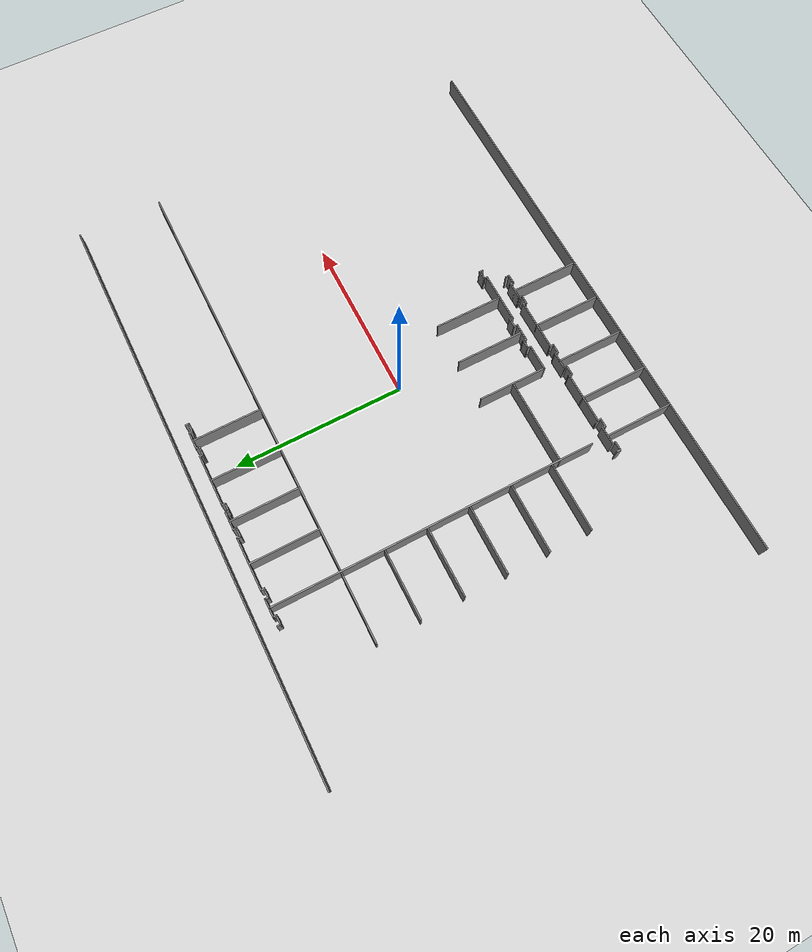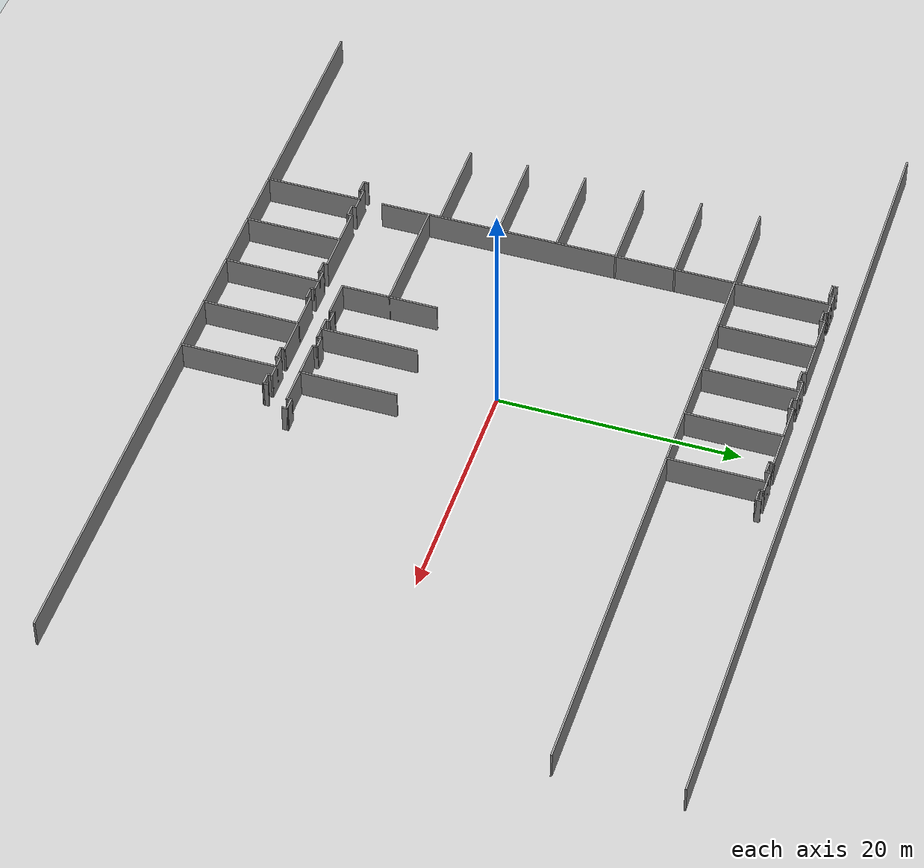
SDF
<sdf version="1.7">
 <world name="default">
  <model name="ground_plane">
   <static>1</static>
   <link name="link">
    <collision name="collision">
     <geometry><plane><normal>0 0 1</normal><size>100 100</size></plane></geometry>
     <surface>
      <contact><collide_bitmask>65535</collide_bitmask></contact>
      <friction><ode><mu>100</mu><mu2>50</mu2></ode></friction>
     </surface>
    </collision>
    <visual name="visual">
     <cast_shadows>0</cast_shadows>
     <geometry><plane><normal>0 0 1</normal><size>100 100</size></plane></geometry>
     <material>
      <script><uri>file://media/materials/scripts/gazebo.material</uri><name>Gazebo/Grey</name></script>
     </material>
    </visual>
   </link>
  </model>
  <model name="hotel_floor">
   <link name="Wall_0">
    <collision name="Wall_0_Collision">
     <geometry><box><size>68.15 0.15 2.5</size></box></geometry>
     <pose>0 0 1.25 0 -0 0</pose>
    </collision>
    <visual name="Wall_0_Visual">
     <pose>0 0 1.25 0 -0 0</pose>
     <geometry><box><size>68.15 0.15 2.5</size></box></geometry>
     <material>
      <script><uri>file://media/materials/scripts/gazebo.material</uri><name>Gazebo/Grey</name></script>
      <ambient>1 1 1 1</ambient>
     </material>
     <meta><layer>0</layer></meta>
    </visual>
    <pose>0 25 0 0 -0 0</pose>
   </link>
   <link name="Wall_14">
    <collision name="Wall_14_Collision">
     <geometry><box><size>38.15 0.15 2.5</size></box></geometry>
     <pose>0 0 1.25 0 -0 0</pose>
    </collision>
    <visual name="Wall_14_Visual">
     <pose>0 0 1.25 0 -0 0</pose>
     <geometry><box><size>38.15 0.15 2.5</size></box></geometry>
     <material>
      <script><uri>file://media/materials/scripts/gazebo.material</uri><name>Gazebo/Grey</name></script>
      <ambient>1 1 1 1</ambient>
     </material>
     <meta><layer>0</layer></meta>
    </visual>
    <pose>-16 4 0 0 -0 1.5708</pose>
   </link>
   <link name="Wall_212">
    <collision name="Wall_212_Collision">
     <geometry><box><size>0.5 0.15 2.5</size></box></geometry>
     <pose>0 0 1.25 0 -0 0</pose>
    </collision>
    <visual name="Wall_212_Visual">
     <pose>0 0 1.25 0 -0 0</pose>
     <geometry><box><size>0.5 0.15 2.5</size></box></geometry>
     <material>
      <script><uri>file://media/materials/scripts/gazebo.material</uri><name>Gazebo/Grey</name></script>
      <ambient>1 1 1 1</ambient>
     </material>
     <meta><layer>0</layer></meta>
    </visual>
    <pose>-18 -17.175 0 0 -0 -1.5708</pose>
   </link>
   <link name="Wall_213">
    <collision name="Wall_213_Collision">
     <geometry><box><size>1.15 0.15 2.5</size></box></geometry>
     <pose>0 0 1.25 0 -0 0</pose>
    </collision>
    <visual name="Wall_213_Visual">
     <pose>0 0 1.25 0 -0 0</pose>
     <geometry><box><size>1.15 0.15 2.5</size></box></geometry>
     <material>
      <script><uri>file://media/materials/scripts/gazebo.material</uri><name>Gazebo/Grey</name></script>
      <ambient>1 1 1 1</ambient>
     </material>
     <meta><layer>0</layer></meta>
    </visual>
    <pose>-17.5 -17.35 0 0 -0 0</pose>
   </link>
   <link name="Wall_215">
    <collision name="Wall_215_Collision">
     <geometry><box><size>0.5 0.15 2.5</size></box></geometry>
     <pose>0 0 1.25 0 -0 0</pose>
    </collision>
    <visual name="Wall_215_Visual">
     <pose>0 0 1.25 0 -0 0</pose>
     <geometry><box><size>0.5 0.15 2.5</size></box></geometry>
     <material>
      <script><uri>file://media/materials/scripts/gazebo.material</uri><name>Gazebo/Grey</name></script>
      <ambient>1 1 1 1</ambient>
     </material>
     <meta><layer>0</layer></meta>
    </visual>
    <pose>-17 -17.175 0 0 -0 1.5708</pose>
   </link>
   <link name="Wall_216">
    <collision name="Wall_216_Collision">
     <geometry><box><size>2.15 0.15 2.5</size></box></geometry>
     <pose>0 0 1.25 0 -0 0</pose>
    </collision>
    <visual name="Wall_216_Visual">
     <pose>0 0 1.25 0 -0 0</pose>
     <geometry><box><size>2.15 0.15 2.5</size></box></geometry>
     <material>
      <script><uri>file://media/materials/scripts/gazebo.material</uri><name>Gazebo/Grey</name></script>
      <ambient>1 1 1 1</ambient>
     </material>
     <meta><layer>0</layer></meta>
    </visual>
    <pose>-16 -17 0 0 -0 0</pose>
   </link>
   <link name="Wall_218">
    <collision name="Wall_218_Collision">
     <geometry><box><size>0.5 0.15 2.5</size></box></geometry>
     <pose>0 0 1.25 0 -0 0</pose>
    </collision>
    <visual name="Wall_218_Visual">
     <pose>0 0 1.25 0 -0 0</pose>
     <geometry><box><size>0.5 0.15 2.5</size></box></geometry>
     <material>
      <script><uri>file://media/materials/scripts/gazebo.material</uri><name>Gazebo/Grey</name></script>
      <ambient>1 1 1 1</ambient>
     </material>
     <meta><layer>0</layer></meta>
    </visual>
    <pose>-15 -17.175 0 0 -0 -1.5708</pose>
   </link>
   <link name="Wall_219">
    <collision name="Wall_219_Collision">
     <geometry><box><size>1.15 0.15 2.5</size></box></geometry>
     <pose>0 0 1.25 0 -0 0</pose>
    </collision>
    <visual name="Wall_219_Visual">
     <pose>0 0 1.25 0 -0 0</pose>
     <geometry><box><size>1.15 0.15 2.5</size></box></geometry>
     <material>
      <script><uri>file://media/materials/scripts/gazebo.material</uri><name>Gazebo/Grey</name></script>
      <ambient>1 1 1 1</ambient>
     </material>
     <meta><layer>0</layer></meta>
    </visual>
    <pose>-14.5 -17.35 0 0 -0 0</pose>
   </link>
   <link name="Wall_22">
    <collision name="Wall_22_Collision">
     <geometry><box><size>10.15 0.15 2.5</size></box></geometry>
     <pose>0 0 1.25 0 -0 0</pose>
    </collision>
    <visual name="Wall_22_Visual">
     <pose>0 0 1.25 0 -0 0</pose>
     <geometry><box><size>10.15 0.15 2.5</size></box></geometry>
     <material>
      <script><uri>file://media/materials/scripts/gazebo.material</uri><name>Gazebo/Grey</name></script>
      <ambient>1 1 1 1</ambient>
     </material>
     <meta><layer>0</layer></meta>
    </visual>
    <pose>-11 -11 0 0 -0 0</pose>
   </link>
   <link name="Wall_221">
    <collision name="Wall_221_Collision">
     <geometry><box><size>0.5 0.15 2.5</size></box></geometry>
     <pose>0 0 1.25 0 -0 0</pose>
    </collision>
    <visual name="Wall_221_Visual">
     <pose>0 0 1.25 0 -0 0</pose>
     <geometry><box><size>0.5 0.15 2.5</size></box></geometry>
     <material>
      <script><uri>file://media/materials/scripts/gazebo.material</uri><name>Gazebo/Grey</name></script>
      <ambient>1 1 1 1</ambient>
     </material>
     <meta><layer>0</layer></meta>
    </visual>
    <pose>-14 -17.175 0 0 -0 1.5708</pose>
   </link>
   <link name="Wall_222">
    <collision name="Wall_222_Collision">
     <geometry><box><size>6.15 0.15 2.5</size></box></geometry>
     <pose>0 0 1.25 0 -0 0</pose>
    </collision>
    <visual name="Wall_222_Visual">
     <pose>0 0 1.25 0 -0 0</pose>
     <geometry><box><size>6.15 0.15 2.5</size></box></geometry>
     <material>
      <script><uri>file://media/materials/scripts/gazebo.material</uri><name>Gazebo/Grey</name></script>
      <ambient>1 1 1 1</ambient>
     </material>
     <meta><layer>0</layer></meta>
    </visual>
    <pose>-11 -17 0 0 -0 0</pose>
   </link>
   <link name="Wall_224">
    <collision name="Wall_224_Collision">
     <geometry><box><size>0.5 0.15 2.5</size></box></geometry>
     <pose>0 0 1.25 0 -0 0</pose>
    </collision>
    <visual name="Wall_224_Visual">
     <pose>0 0 1.25 0 -0 0</pose>
     <geometry><box><size>0.5 0.15 2.5</size></box></geometry>
     <material>
      <script><uri>file://media/materials/scripts/gazebo.material</uri><name>Gazebo/Grey</name></script>
      <ambient>1 1 1 1</ambient>
     </material>
     <meta><layer>0</layer></meta>
    </visual>
    <pose>-8 -17.175 0 0 -0 -1.5708</pose>
   </link>
   <link name="Wall_225">
    <collision name="Wall_225_Collision">
     <geometry><box><size>1.15 0.15 2.5</size></box></geometry>
     <pose>0 0 1.25 0 -0 0</pose>
    </collision>
    <visual name="Wall_225_Visual">
     <pose>0 0 1.25 0 -0 0</pose>
     <geometry><box><size>1.15 0.15 2.5</size></box></geometry>
     <material>
      <script><uri>file://media/materials/scripts/gazebo.material</uri><name>Gazebo/Grey</name></script>
      <ambient>1 1 1 1</ambient>
     </material>
     <meta><layer>0</layer></meta>
    </visual>
    <pose>-7.5 -17.35 0 0 -0 0</pose>
   </link>
   <link name="Wall_227">
    <collision name="Wall_227_Collision">
     <geometry><box><size>0.5 0.15 2.5</size></box></geometry>
     <pose>0 0 1.25 0 -0 0</pose>
    </collision>
    <visual name="Wall_227_Visual">
     <pose>0 0 1.25 0 -0 0</pose>
     <geometry><box><size>0.5 0.15 2.5</size></box></geometry>
     <material>
      <script><uri>file://media/materials/scripts/gazebo.material</uri><name>Gazebo/Grey</name></script>
      <ambient>1 1 1 1</ambient>
     </material>
     <meta><layer>0</layer></meta>
    </visual>
    <pose>-7 -17.175 0 0 -0 1.5708</pose>
   </link>
   <link name="Wall_228">
    <collision name="Wall_228_Collision">
     <geometry><box><size>2.15 0.15 2.5</size></box></geometry>
     <pose>0 0 1.25 0 -0 0</pose>
    </collision>
    <visual name="Wall_228_Visual">
     <pose>0 0 1.25 0 -0 0</pose>
     <geometry><box><size>2.15 0.15 2.5</size></box></geometry>
     <material>
      <script><uri>file://media/materials/scripts/gazebo.material</uri><name>Gazebo/Grey</name></script>
      <ambient>1 1 1 1</ambient>
     </material>
     <meta><layer>0</layer></meta>
    </visual>
    <pose>-6 -17 0 0 -0 0</pose>
   </link>
   <link name="Wall_24">
    <collision name="Wall_24_Collision">
     <geometry><box><size>8.15 0.15 2.5</size></box></geometry>
     <pose>0 0 1.25 0 -0 0</pose>
    </collision>
    <visual name="Wall_24_Visual">
     <pose>0 0 1.25 0 -0 0</pose>
     <geometry><box><size>8.15 0.15 2.5</size></box></geometry>
     <material>
      <script><uri>file://media/materials/scripts/gazebo.material</uri><name>Gazebo/Grey</name></script>
      <ambient>1 1 1 1</ambient>
     </material>
     <meta><layer>0</layer></meta>
    </visual>
    <pose>-6 -11 0 0 -0 1.5708</pose>
   </link>
   <link name="Wall_240">
    <collision name="Wall_240_Collision">
     <geometry><box><size>0.5 0.15 2.5</size></box></geometry>
     <pose>0 0 1.25 0 -0 0</pose>
    </collision>
    <visual name="Wall_240_Visual">
     <pose>0 0 1.25 0 -0 0</pose>
     <geometry><box><size>0.5 0.15 2.5</size></box></geometry>
     <material>
      <script><uri>file://media/materials/scripts/gazebo.material</uri><name>Gazebo/Grey</name></script>
      <ambient>1 1 1 1</ambient>
     </material>
     <meta><layer>0</layer></meta>
    </visual>
    <pose>-5 -17.175 0 0 -0 -1.5708</pose>
   </link>
   <link name="Wall_241">
    <collision name="Wall_241_Collision">
     <geometry><box><size>1.15 0.15 2.5</size></box></geometry>
     <pose>0 0 1.25 0 -0 0</pose>
    </collision>
    <visual name="Wall_241_Visual">
     <pose>0 0 1.25 0 -0 0</pose>
     <geometry><box><size>1.15 0.15 2.5</size></box></geometry>
     <material>
      <script><uri>file://media/materials/scripts/gazebo.material</uri><name>Gazebo/Grey</name></script>
      <ambient>1 1 1 1</ambient>
     </material>
     <meta><layer>0</layer></meta>
    </visual>
    <pose>-4.5 -17.35 0 0 -0 0</pose>
   </link>
   <link name="Wall_243">
    <collision name="Wall_243_Collision">
     <geometry><box><size>0.5 0.15 2.5</size></box></geometry>
     <pose>0 0 1.25 0 -0 0</pose>
    </collision>
    <visual name="Wall_243_Visual">
     <pose>0 0 1.25 0 -0 0</pose>
     <geometry><box><size>0.5 0.15 2.5</size></box></geometry>
     <material>
      <script><uri>file://media/materials/scripts/gazebo.material</uri><name>Gazebo/Grey</name></script>
      <ambient>1 1 1 1</ambient>
     </material>
     <meta><layer>0</layer></meta>
    </visual>
    <pose>-4 -17.175 0 0 -0 1.5708</pose>
   </link>
   <link name="Wall_244">
    <collision name="Wall_244_Collision">
     <geometry><box><size>6.15 0.15 2.5</size></box></geometry>
     <pose>0 0 1.25 0 -0 0</pose>
    </collision>
    <visual name="Wall_244_Visual">
     <pose>0 0 1.25 0 -0 0</pose>
     <geometry><box><size>6.15 0.15 2.5</size></box></geometry>
     <material>
      <script><uri>file://media/materials/scripts/gazebo.material</uri><name>Gazebo/Grey</name></script>
      <ambient>1 1 1 1</ambient>
     </material>
     <meta><layer>0</layer></meta>
    </visual>
    <pose>-1 -17 0 0 -0 0</pose>
   </link>
   <link name="Wall_246">
    <collision name="Wall_246_Collision">
     <geometry><box><size>0.5 0.15 2.5</size></box></geometry>
     <pose>0 0 1.25 0 -0 0</pose>
    </collision>
    <visual name="Wall_246_Visual">
     <pose>0 0 1.25 0 -0 0</pose>
     <geometry><box><size>0.5 0.15 2.5</size></box></geometry>
     <material>
      <script><uri>file://media/materials/scripts/gazebo.material</uri><name>Gazebo/Grey</name></script>
      <ambient>1 1 1 1</ambient>
     </material>
     <meta><layer>0</layer></meta>
    </visual>
    <pose>2 -17.175 0 0 -0 -1.5708</pose>
   </link>
   <link name="Wall_247">
    <collision name="Wall_247_Collision">
     <geometry><box><size>1.15 0.15 2.5</size></box></geometry>
     <pose>0 0 1.25 0 -0 0</pose>
    </collision>
    <visual name="Wall_247_Visual">
     <pose>0 0 1.25 0 -0 0</pose>
     <geometry><box><size>1.15 0.15 2.5</size></box></geometry>
     <material>
      <script><uri>file://media/materials/scripts/gazebo.material</uri><name>Gazebo/Grey</name></script>
      <ambient>1 1 1 1</ambient>
     </material>
     <meta><layer>0</layer></meta>
    </visual>
    <pose>2.5 -17.35 0 0 -0 0</pose>
   </link>
   <link name="Wall_249">
    <collision name="Wall_249_Collision">
     <geometry><box><size>0.5 0.15 2.5</size></box></geometry>
     <pose>0 0 1.25 0 -0 0</pose>
    </collision>
    <visual name="Wall_249_Visual">
     <pose>0 0 1.25 0 -0 0</pose>
     <geometry><box><size>0.5 0.15 2.5</size></box></geometry>
     <material>
      <script><uri>file://media/materials/scripts/gazebo.material</uri><name>Gazebo/Grey</name></script>
      <ambient>1 1 1 1</ambient>
     </material>
     <meta><layer>0</layer></meta>
    </visual>
    <pose>3 -17.175 0 0 -0 1.5708</pose>
   </link>
   <link name="Wall_250">
    <collision name="Wall_250_Collision">
     <geometry><box><size>2.15 0.15 2.5</size></box></geometry>
     <pose>0 0 1.25 0 -0 0</pose>
    </collision>
    <visual name="Wall_250_Visual">
     <pose>0 0 1.25 0 -0 0</pose>
     <geometry><box><size>2.15 0.15 2.5</size></box></geometry>
     <material>
      <script><uri>file://media/materials/scripts/gazebo.material</uri><name>Gazebo/Grey</name></script>
      <ambient>1 1 1 1</ambient>
     </material>
     <meta><layer>0</layer></meta>
    </visual>
    <pose>4 -17 0 0 -0 0</pose>
   </link>
   <link name="Wall_252">
    <collision name="Wall_252_Collision">
     <geometry><box><size>0.5 0.15 2.5</size></box></geometry>
     <pose>0 0 1.25 0 -0 0</pose>
    </collision>
    <visual name="Wall_252_Visual">
     <pose>0 0 1.25 0 -0 0</pose>
     <geometry><box><size>0.5 0.15 2.5</size></box></geometry>
     <material>
      <script><uri>file://media/materials/scripts/gazebo.material</uri><name>Gazebo/Grey</name></script>
      <ambient>1 1 1 1</ambient>
     </material>
     <meta><layer>0</layer></meta>
    </visual>
    <pose>5 -17.175 0 0 -0 -1.5708</pose>
   </link>
   <link name="Wall_253">
    <collision name="Wall_253_Collision">
     <geometry><box><size>1.15 0.15 2.5</size></box></geometry>
     <pose>0 0 1.25 0 -0 0</pose>
    </collision>
    <visual name="Wall_253_Visual">
     <pose>0 0 1.25 0 -0 0</pose>
     <geometry><box><size>1.15 0.15 2.5</size></box></geometry>
     <material>
      <script><uri>file://media/materials/scripts/gazebo.material</uri><name>Gazebo/Grey</name></script>
      <ambient>1 1 1 1</ambient>
     </material>
     <meta><layer>0</layer></meta>
    </visual>
    <pose>5.5 -17.35 0 0 -0 0</pose>
   </link>
   <link name="Wall_255">
    <collision name="Wall_255_Collision">
     <geometry><box><size>0.5 0.15 2.5</size></box></geometry>
     <pose>0 0 1.25 0 -0 0</pose>
    </collision>
    <visual name="Wall_255_Visual">
     <pose>0 0 1.25 0 -0 0</pose>
     <geometry><box><size>0.5 0.15 2.5</size></box></geometry>
     <material>
      <script><uri>file://media/materials/scripts/gazebo.material</uri><name>Gazebo/Grey</name></script>
      <ambient>1 1 1 1</ambient>
     </material>
     <meta><layer>0</layer></meta>
    </visual>
    <pose>6 -17.175 0 0 -0 1.5708</pose>
   </link>
   <link name="Wall_288">
    <collision name="Wall_288_Collision">
     <geometry><box><size>3.15 0.15 2.5</size></box></geometry>
     <pose>0 0 1.25 0 -0 0</pose>
    </collision>
    <visual name="Wall_288_Visual">
     <pose>0 0 1.25 0 -0 0</pose>
     <geometry><box><size>3.15 0.15 2.5</size></box></geometry>
     <material>
      <script><uri>file://media/materials/scripts/gazebo.material</uri><name>Gazebo/Grey</name></script>
      <ambient>1 1 1 1</ambient>
     </material>
     <meta><layer>0</layer></meta>
    </visual>
    <pose>-4.5 -15 0 0 -0 0</pose>
   </link>
   <link name="Wall_290">
    <collision name="Wall_290_Collision">
     <geometry><box><size>0.5 0.15 2.5</size></box></geometry>
     <pose>0 0 1.25 0 -0 0</pose>
    </collision>
    <visual name="Wall_290_Visual">
     <pose>0 0 1.25 0 -0 0</pose>
     <geometry><box><size>0.5 0.15 2.5</size></box></geometry>
     <material>
      <script><uri>file://media/materials/scripts/gazebo.material</uri><name>Gazebo/Grey</name></script>
      <ambient>1 1 1 1</ambient>
     </material>
     <meta><layer>0</layer></meta>
    </visual>
    <pose>-3 -14.825 0 0 -0 1.5708</pose>
   </link>
   <link name="Wall_291">
    <collision name="Wall_291_Collision">
     <geometry><box><size>1.15 0.15 2.5</size></box></geometry>
     <pose>0 0 1.25 0 -0 0</pose>
    </collision>
    <visual name="Wall_291_Visual">
     <pose>0 0 1.25 0 -0 0</pose>
     <geometry><box><size>1.15 0.15 2.5</size></box></geometry>
     <material>
      <script><uri>file://media/materials/scripts/gazebo.material</uri><name>Gazebo/Grey</name></script>
      <ambient>1 1 1 1</ambient>
     </material>
     <meta><layer>0</layer></meta>
    </visual>
    <pose>-2.5 -14.65 0 0 -0 0</pose>
   </link>
   <link name="Wall_293">
    <collision name="Wall_293_Collision">
     <geometry><box><size>0.5 0.15 2.5</size></box></geometry>
     <pose>0 0 1.25 0 -0 0</pose>
    </collision>
    <visual name="Wall_293_Visual">
     <pose>0 0 1.25 0 -0 0</pose>
     <geometry><box><size>0.5 0.15 2.5</size></box></geometry>
     <material>
      <script><uri>file://media/materials/scripts/gazebo.material</uri><name>Gazebo/Grey</name></script>
      <ambient>1 1 1 1</ambient>
     </material>
     <meta><layer>0</layer></meta>
    </visual>
    <pose>-2 -14.825 0 0 -0 -1.5708</pose>
   </link>
   <link name="Wall_294">
    <collision name="Wall_294_Collision">
     <geometry><box><size>2.15 0.15 2.5</size></box></geometry>
     <pose>0 0 1.25 0 -0 0</pose>
    </collision>
    <visual name="Wall_294_Visual">
     <pose>0 0 1.25 0 -0 0</pose>
     <geometry><box><size>2.15 0.15 2.5</size></box></geometry>
     <material>
      <script><uri>file://media/materials/scripts/gazebo.material</uri><name>Gazebo/Grey</name></script>
      <ambient>1 1 1 1</ambient>
     </material>
     <meta><layer>0</layer></meta>
    </visual>
    <pose>-1 -15 0 0 -0 0</pose>
   </link>
   <link name="Wall_296">
    <collision name="Wall_296_Collision">
     <geometry><box><size>0.5 0.15 2.5</size></box></geometry>
     <pose>0 0 1.25 0 -0 0</pose>
    </collision>
    <visual name="Wall_296_Visual">
     <pose>0 0 1.25 0 -0 0</pose>
     <geometry><box><size>0.5 0.15 2.5</size></box></geometry>
     <material>
      <script><uri>file://media/materials/scripts/gazebo.material</uri><name>Gazebo/Grey</name></script>
      <ambient>1 1 1 1</ambient>
     </material>
     <meta><layer>0</layer></meta>
    </visual>
    <pose>0 -14.825 0 0 -0 1.5708</pose>
   </link>
   <link name="Wall_297">
    <collision name="Wall_297_Collision">
     <geometry><box><size>1.15 0.15 2.5</size></box></geometry>
     <pose>0 0 1.25 0 -0 0</pose>
    </collision>
    <visual name="Wall_297_Visual">
     <pose>0 0 1.25 0 -0 0</pose>
     <geometry><box><size>1.15 0.15 2.5</size></box></geometry>
     <material>
      <script><uri>file://media/materials/scripts/gazebo.material</uri><name>Gazebo/Grey</name></script>
      <ambient>1 1 1 1</ambient>
     </material>
     <meta><layer>0</layer></meta>
    </visual>
    <pose>0.5 -14.65 0 0 -0 0</pose>
   </link>
   <link name="Wall_299">
    <collision name="Wall_299_Collision">
     <geometry><box><size>0.5 0.15 2.5</size></box></geometry>
     <pose>0 0 1.25 0 -0 0</pose>
    </collision>
    <visual name="Wall_299_Visual">
     <pose>0 0 1.25 0 -0 0</pose>
     <geometry><box><size>0.5 0.15 2.5</size></box></geometry>
     <material>
      <script><uri>file://media/materials/scripts/gazebo.material</uri><name>Gazebo/Grey</name></script>
      <ambient>1 1 1 1</ambient>
     </material>
     <meta><layer>0</layer></meta>
    </visual>
    <pose>1 -14.825 0 0 -0 -1.5708</pose>
   </link>
   <link name="Wall_300">
    <collision name="Wall_300_Collision">
     <geometry><box><size>6.15 0.15 2.5</size></box></geometry>
     <pose>0 0 1.25 0 -0 0</pose>
    </collision>
    <visual name="Wall_300_Visual">
     <pose>0 0 1.25 0 -0 0</pose>
     <geometry><box><size>6.15 0.15 2.5</size></box></geometry>
     <material>
      <script><uri>file://media/materials/scripts/gazebo.material</uri><name>Gazebo/Grey</name></script>
      <ambient>1 1 1 1</ambient>
     </material>
     <meta><layer>0</layer></meta>
    </visual>
    <pose>4 -15 0 0 -0 0</pose>
   </link>
   <link name="Wall_302">
    <collision name="Wall_302_Collision">
     <geometry><box><size>0.5 0.15 2.5</size></box></geometry>
     <pose>0 0 1.25 0 -0 0</pose>
    </collision>
    <visual name="Wall_302_Visual">
     <pose>0 0 1.25 0 -0 0</pose>
     <geometry><box><size>0.5 0.15 2.5</size></box></geometry>
     <material>
      <script><uri>file://media/materials/scripts/gazebo.material</uri><name>Gazebo/Grey</name></script>
      <ambient>1 1 1 1</ambient>
     </material>
     <meta><layer>0</layer></meta>
    </visual>
    <pose>7 -14.825 0 0 -0 1.5708</pose>
   </link>
   <link name="Wall_303">
    <collision name="Wall_303_Collision">
     <geometry><box><size>1.15 0.15 2.5</size></box></geometry>
     <pose>0 0 1.25 0 -0 0</pose>
    </collision>
    <visual name="Wall_303_Visual">
     <pose>0 0 1.25 0 -0 0</pose>
     <geometry><box><size>1.15 0.15 2.5</size></box></geometry>
     <material>
      <script><uri>file://media/materials/scripts/gazebo.material</uri><name>Gazebo/Grey</name></script>
      <ambient>1 1 1 1</ambient>
     </material>
     <meta><layer>0</layer></meta>
    </visual>
    <pose>7.5 -14.65 0 0 -0 0</pose>
   </link>
   <link name="Wall_305">
    <collision name="Wall_305_Collision">
     <geometry><box><size>0.5 0.15 2.5</size></box></geometry>
     <pose>0 0 1.25 0 -0 0</pose>
    </collision>
    <visual name="Wall_305_Visual">
     <pose>0 0 1.25 0 -0 0</pose>
     <geometry><box><size>0.5 0.15 2.5</size></box></geometry>
     <material>
      <script><uri>file://media/materials/scripts/gazebo.material</uri><name>Gazebo/Grey</name></script>
      <ambient>1 1 1 1</ambient>
     </material>
     <meta><layer>0</layer></meta>
    </visual>
    <pose>8 -14.825 0 0 -0 -1.5708</pose>
   </link>
   <link name="Wall_32">
    <collision name="Wall_32_Collision">
     <geometry><box><size>58.15 0.15 2.5</size></box></geometry>
     <pose>0 0 1.25 0 -0 0</pose>
    </collision>
    <visual name="Wall_32_Visual">
     <pose>0 0 1.25 0 -0 0</pose>
     <geometry><box><size>58.15 0.15 2.5</size></box></geometry>
     <material>
      <script><uri>file://media/materials/scripts/gazebo.material</uri><name>Gazebo/Grey</name></script>
      <ambient>1 1 1 1</ambient>
     </material>
     <meta><layer>0</layer></meta>
    </visual>
    <pose>5 15 0 0 -0 0</pose>
   </link>
   <link name="Wall_381">
    <collision name="Wall_381_Collision">
     <geometry><box><size>0.5 0.15 2.5</size></box></geometry>
     <pose>0 0 1.25 0 -0 0</pose>
    </collision>
    <visual name="Wall_381_Visual">
     <pose>0 0 1.25 0 -0 0</pose>
     <geometry><box><size>0.5 0.15 2.5</size></box></geometry>
     <material>
      <script><uri>file://media/materials/scripts/gazebo.material</uri><name>Gazebo/Grey</name></script>
      <ambient>1 1 1 1</ambient>
     </material>
     <meta><layer>0</layer></meta>
    </visual>
    <pose>-18 22.825 0 0 -0 -1.5708</pose>
   </link>
   <link name="Wall_382">
    <collision name="Wall_382_Collision">
     <geometry><box><size>1.15 0.15 2.5</size></box></geometry>
     <pose>0 0 1.25 0 -0 0</pose>
    </collision>
    <visual name="Wall_382_Visual">
     <pose>0 0 1.25 0 -0 0</pose>
     <geometry><box><size>1.15 0.15 2.5</size></box></geometry>
     <material>
      <script><uri>file://media/materials/scripts/gazebo.material</uri><name>Gazebo/Grey</name></script>
      <ambient>1 1 1 1</ambient>
     </material>
     <meta><layer>0</layer></meta>
    </visual>
    <pose>-17.5 22.65 0 0 -0 0</pose>
   </link>
   <link name="Wall_384">
    <collision name="Wall_384_Collision">
     <geometry><box><size>0.5 0.15 2.5</size></box></geometry>
     <pose>0 0 1.25 0 -0 0</pose>
    </collision>
    <visual name="Wall_384_Visual">
     <pose>0 0 1.25 0 -0 0</pose>
     <geometry><box><size>0.5 0.15 2.5</size></box></geometry>
     <material>
      <script><uri>file://media/materials/scripts/gazebo.material</uri><name>Gazebo/Grey</name></script>
      <ambient>1 1 1 1</ambient>
     </material>
     <meta><layer>0</layer></meta>
    </visual>
    <pose>-17 22.825 0 0 -0 1.5708</pose>
   </link>
   <link name="Wall_385">
    <collision name="Wall_385_Collision">
     <geometry><box><size>2.15 0.15 2.5</size></box></geometry>
     <pose>0 0 1.25 0 -0 0</pose>
    </collision>
    <visual name="Wall_385_Visual">
     <pose>0 0 1.25 0 -0 0</pose>
     <geometry><box><size>2.15 0.15 2.5</size></box></geometry>
     <material>
      <script><uri>file://media/materials/scripts/gazebo.material</uri><name>Gazebo/Grey</name></script>
      <ambient>1 1 1 1</ambient>
     </material>
     <meta><layer>0</layer></meta>
    </visual>
    <pose>-16 23 0 0 -0 0</pose>
   </link>
   <link name="Wall_387">
    <collision name="Wall_387_Collision">
     <geometry><box><size>0.5 0.15 2.5</size></box></geometry>
     <pose>0 0 1.25 0 -0 0</pose>
    </collision>
    <visual name="Wall_387_Visual">
     <pose>0 0 1.25 0 -0 0</pose>
     <geometry><box><size>0.5 0.15 2.5</size></box></geometry>
     <material>
      <script><uri>file://media/materials/scripts/gazebo.material</uri><name>Gazebo/Grey</name></script>
      <ambient>1 1 1 1</ambient>
     </material>
     <meta><layer>0</layer></meta>
    </visual>
    <pose>-15 22.825 0 0 -0 -1.5708</pose>
   </link>
   <link name="Wall_388">
    <collision name="Wall_388_Collision">
     <geometry><box><size>1.15 0.15 2.5</size></box></geometry>
     <pose>0 0 1.25 0 -0 0</pose>
    </collision>
    <visual name="Wall_388_Visual">
     <pose>0 0 1.25 0 -0 0</pose>
     <geometry><box><size>1.15 0.15 2.5</size></box></geometry>
     <material>
      <script><uri>file://media/materials/scripts/gazebo.material</uri><name>Gazebo/Grey</name></script>
      <ambient>1 1 1 1</ambient>
     </material>
     <meta><layer>0</layer></meta>
    </visual>
    <pose>-14.5 22.65 0 0 -0 0</pose>
   </link>
   <link name="Wall_390">
    <collision name="Wall_390_Collision">
     <geometry><box><size>0.5 0.15 2.5</size></box></geometry>
     <pose>0 0 1.25 0 -0 0</pose>
    </collision>
    <visual name="Wall_390_Visual">
     <pose>0 0 1.25 0 -0 0</pose>
     <geometry><box><size>0.5 0.15 2.5</size></box></geometry>
     <material>
      <script><uri>file://media/materials/scripts/gazebo.material</uri><name>Gazebo/Grey</name></script>
      <ambient>1 1 1 1</ambient>
     </material>
     <meta><layer>0</layer></meta>
    </visual>
    <pose>-14 22.825 0 0 -0 1.5708</pose>
   </link>
   <link name="Wall_391">
    <collision name="Wall_391_Collision">
     <geometry><box><size>6.15 0.15 2.5</size></box></geometry>
     <pose>0 0 1.25 0 -0 0</pose>
    </collision>
    <visual name="Wall_391_Visual">
     <pose>0 0 1.25 0 -0 0</pose>
     <geometry><box><size>6.15 0.15 2.5</size></box></geometry>
     <material>
      <script><uri>file://media/materials/scripts/gazebo.material</uri><name>Gazebo/Grey</name></script>
      <ambient>1 1 1 1</ambient>
     </material>
     <meta><layer>0</layer></meta>
    </visual>
    <pose>-11 23 0 0 -0 0</pose>
   </link>
   <link name="Wall_393">
    <collision name="Wall_393_Collision">
     <geometry><box><size>0.5 0.15 2.5</size></box></geometry>
     <pose>0 0 1.25 0 -0 0</pose>
    </collision>
    <visual name="Wall_393_Visual">
     <pose>0 0 1.25 0 -0 0</pose>
     <geometry><box><size>0.5 0.15 2.5</size></box></geometry>
     <material>
      <script><uri>file://media/materials/scripts/gazebo.material</uri><name>Gazebo/Grey</name></script>
      <ambient>1 1 1 1</ambient>
     </material>
     <meta><layer>0</layer></meta>
    </visual>
    <pose>-8 22.825 0 0 -0 -1.5708</pose>
   </link>
   <link name="Wall_394">
    <collision name="Wall_394_Collision">
     <geometry><box><size>1.15 0.15 2.5</size></box></geometry>
     <pose>0 0 1.25 0 -0 0</pose>
    </collision>
    <visual name="Wall_394_Visual">
     <pose>0 0 1.25 0 -0 0</pose>
     <geometry><box><size>1.15 0.15 2.5</size></box></geometry>
     <material>
      <script><uri>file://media/materials/scripts/gazebo.material</uri><name>Gazebo/Grey</name></script>
      <ambient>1 1 1 1</ambient>
     </material>
     <meta><layer>0</layer></meta>
    </visual>
    <pose>-7.5 22.65 0 0 -0 0</pose>
   </link>
   <link name="Wall_396">
    <collision name="Wall_396_Collision">
     <geometry><box><size>0.5 0.15 2.5</size></box></geometry>
     <pose>0 0 1.25 0 -0 0</pose>
    </collision>
    <visual name="Wall_396_Visual">
     <pose>0 0 1.25 0 -0 0</pose>
     <geometry><box><size>0.5 0.15 2.5</size></box></geometry>
     <material>
      <script><uri>file://media/materials/scripts/gazebo.material</uri><name>Gazebo/Grey</name></script>
      <ambient>1 1 1 1</ambient>
     </material>
     <meta><layer>0</layer></meta>
    </visual>
    <pose>-7 22.825 0 0 -0 1.5708</pose>
   </link>
   <link name="Wall_397">
    <collision name="Wall_397_Collision">
     <geometry><box><size>2.15 0.15 2.5</size></box></geometry>
     <pose>0 0 1.25 0 -0 0</pose>
    </collision>
    <visual name="Wall_397_Visual">
     <pose>0 0 1.25 0 -0 0</pose>
     <geometry><box><size>2.15 0.15 2.5</size></box></geometry>
     <material>
      <script><uri>file://media/materials/scripts/gazebo.material</uri><name>Gazebo/Grey</name></script>
      <ambient>1 1 1 1</ambient>
     </material>
     <meta><layer>0</layer></meta>
    </visual>
    <pose>-6 23 0 0 -0 0</pose>
   </link>
   <link name="Wall_399">
    <collision name="Wall_399_Collision">
     <geometry><box><size>0.5 0.15 2.5</size></box></geometry>
     <pose>0 0 1.25 0 -0 0</pose>
    </collision>
    <visual name="Wall_399_Visual">
     <pose>0 0 1.25 0 -0 0</pose>
     <geometry><box><size>0.5 0.15 2.5</size></box></geometry>
     <material>
      <script><uri>file://media/materials/scripts/gazebo.material</uri><name>Gazebo/Grey</name></script>
      <ambient>1 1 1 1</ambient>
     </material>
     <meta><layer>0</layer></meta>
    </visual>
    <pose>-5 22.825 0 0 -0 -1.5708</pose>
   </link>
   <link name="Wall_4">
    <collision name="Wall_4_Collision">
     <geometry><box><size>68.15 0.15 2.5</size></box></geometry>
     <pose>0 0 1.25 0 -0 0</pose>
    </collision>
    <visual name="Wall_4_Visual">
     <pose>0 0 1.25 0 -0 0</pose>
     <geometry><box><size>68.15 0.15 2.5</size></box></geometry>
     <material>
      <script><uri>file://media/materials/scripts/gazebo.material</uri><name>Gazebo/Grey</name></script>
      <ambient>1 1 1 1</ambient>
     </material>
     <meta><layer>0</layer></meta>
    </visual>
    <pose>0 -25 0 0 -0 3.14159</pose>
   </link>
   <link name="Wall_400">
    <collision name="Wall_400_Collision">
     <geometry><box><size>1.15 0.15 2.5</size></box></geometry>
     <pose>0 0 1.25 0 -0 0</pose>
    </collision>
    <visual name="Wall_400_Visual">
     <pose>0 0 1.25 0 -0 0</pose>
     <geometry><box><size>1.15 0.15 2.5</size></box></geometry>
     <material>
      <script><uri>file://media/materials/scripts/gazebo.material</uri><name>Gazebo/Grey</name></script>
      <ambient>1 1 1 1</ambient>
     </material>
     <meta><layer>0</layer></meta>
    </visual>
    <pose>-4.5 22.65 0 0 -0 0</pose>
   </link>
   <link name="Wall_402">
    <collision name="Wall_402_Collision">
     <geometry><box><size>0.5 0.15 2.5</size></box></geometry>
     <pose>0 0 1.25 0 -0 0</pose>
    </collision>
    <visual name="Wall_402_Visual">
     <pose>0 0 1.25 0 -0 0</pose>
     <geometry><box><size>0.5 0.15 2.5</size></box></geometry>
     <material>
      <script><uri>file://media/materials/scripts/gazebo.material</uri><name>Gazebo/Grey</name></script>
      <ambient>1 1 1 1</ambient>
     </material>
     <meta><layer>0</layer></meta>
    </visual>
    <pose>-4 22.825 0 0 -0 1.5708</pose>
   </link>
   <link name="Wall_403">
    <collision name="Wall_403_Collision">
     <geometry><box><size>6.15 0.15 2.5</size></box></geometry>
     <pose>0 0 1.25 0 -0 0</pose>
    </collision>
    <visual name="Wall_403_Visual">
     <pose>0 0 1.25 0 -0 0</pose>
     <geometry><box><size>6.15 0.15 2.5</size></box></geometry>
     <material>
      <script><uri>file://media/materials/scripts/gazebo.material</uri><name>Gazebo/Grey</name></script>
      <ambient>1 1 1 1</ambient>
     </material>
     <meta><layer>0</layer></meta>
    </visual>
    <pose>-1 23 0 0 -0 0</pose>
   </link>
   <link name="Wall_405">
    <collision name="Wall_405_Collision">
     <geometry><box><size>0.5 0.15 2.5</size></box></geometry>
     <pose>0 0 1.25 0 -0 0</pose>
    </collision>
    <visual name="Wall_405_Visual">
     <pose>0 0 1.25 0 -0 0</pose>
     <geometry><box><size>0.5 0.15 2.5</size></box></geometry>
     <material>
      <script><uri>file://media/materials/scripts/gazebo.material</uri><name>Gazebo/Grey</name></script>
      <ambient>1 1 1 1</ambient>
     </material>
     <meta><layer>0</layer></meta>
    </visual>
    <pose>2 22.825 0 0 -0 -1.5708</pose>
   </link>
   <link name="Wall_406">
    <collision name="Wall_406_Collision">
     <geometry><box><size>1.15 0.15 2.5</size></box></geometry>
     <pose>0 0 1.25 0 -0 0</pose>
    </collision>
    <visual name="Wall_406_Visual">
     <pose>0 0 1.25 0 -0 0</pose>
     <geometry><box><size>1.15 0.15 2.5</size></box></geometry>
     <material>
      <script><uri>file://media/materials/scripts/gazebo.material</uri><name>Gazebo/Grey</name></script>
      <ambient>1 1 1 1</ambient>
     </material>
     <meta><layer>0</layer></meta>
    </visual>
    <pose>2.5 22.65 0 0 -0 0</pose>
   </link>
   <link name="Wall_408">
    <collision name="Wall_408_Collision">
     <geometry><box><size>0.5 0.15 2.5</size></box></geometry>
     <pose>0 0 1.25 0 -0 0</pose>
    </collision>
    <visual name="Wall_408_Visual">
     <pose>0 0 1.25 0 -0 0</pose>
     <geometry><box><size>0.5 0.15 2.5</size></box></geometry>
     <material>
      <script><uri>file://media/materials/scripts/gazebo.material</uri><name>Gazebo/Grey</name></script>
      <ambient>1 1 1 1</ambient>
     </material>
     <meta><layer>0</layer></meta>
    </visual>
    <pose>3 22.825 0 0 -0 1.5708</pose>
   </link>
   <link name="Wall_409">
    <collision name="Wall_409_Collision">
     <geometry><box><size>2.15 0.15 2.5</size></box></geometry>
     <pose>0 0 1.25 0 -0 0</pose>
    </collision>
    <visual name="Wall_409_Visual">
     <pose>0 0 1.25 0 -0 0</pose>
     <geometry><box><size>2.15 0.15 2.5</size></box></geometry>
     <material>
      <script><uri>file://media/materials/scripts/gazebo.material</uri><name>Gazebo/Grey</name></script>
      <ambient>1 1 1 1</ambient>
     </material>
     <meta><layer>0</layer></meta>
    </visual>
    <pose>4 23 0 0 -0 0</pose>
   </link>
   <link name="Wall_411">
    <collision name="Wall_411_Collision">
     <geometry><box><size>0.5 0.15 2.5</size></box></geometry>
     <pose>0 0 1.25 0 -0 0</pose>
    </collision>
    <visual name="Wall_411_Visual">
     <pose>0 0 1.25 0 -0 0</pose>
     <geometry><box><size>0.5 0.15 2.5</size></box></geometry>
     <material>
      <script><uri>file://media/materials/scripts/gazebo.material</uri><name>Gazebo/Grey</name></script>
      <ambient>1 1 1 1</ambient>
     </material>
     <meta><layer>0</layer></meta>
    </visual>
    <pose>5 22.825 0 0 -0 -1.5708</pose>
   </link>
   <link name="Wall_412">
    <collision name="Wall_412_Collision">
     <geometry><box><size>1.15 0.15 2.5</size></box></geometry>
     <pose>0 0 1.25 0 -0 0</pose>
    </collision>
    <visual name="Wall_412_Visual">
     <pose>0 0 1.25 0 -0 0</pose>
     <geometry><box><size>1.15 0.15 2.5</size></box></geometry>
     <material>
      <script><uri>file://media/materials/scripts/gazebo.material</uri><name>Gazebo/Grey</name></script>
      <ambient>1 1 1 1</ambient>
     </material>
     <meta><layer>0</layer></meta>
    </visual>
    <pose>5.5 22.65 0 0 -0 0</pose>
   </link>
   <link name="Wall_414">
    <collision name="Wall_414_Collision">
     <geometry><box><size>0.5 0.15 2.5</size></box></geometry>
     <pose>0 0 1.25 0 -0 0</pose>
    </collision>
    <visual name="Wall_414_Visual">
     <pose>0 0 1.25 0 -0 0</pose>
     <geometry><box><size>0.5 0.15 2.5</size></box></geometry>
     <material>
      <script><uri>file://media/materials/scripts/gazebo.material</uri><name>Gazebo/Grey</name></script>
      <ambient>1 1 1 1</ambient>
     </material>
     <meta><layer>0</layer></meta>
    </visual>
    <pose>6 22.825 0 0 -0 1.5708</pose>
   </link>
   <link name="Wall_44">
    <collision name="Wall_44_Collision">
     <geometry><box><size>8.15 0.15 2.5</size></box></geometry>
     <pose>0 0 1.25 0 -0 0</pose>
    </collision>
    <visual name="Wall_44_Visual">
     <pose>0 0 1.25 0 -0 0</pose>
     <geometry><box><size>8.15 0.15 2.5</size></box></geometry>
     <material>
      <script><uri>file://media/materials/scripts/gazebo.material</uri><name>Gazebo/Grey</name></script>
      <ambient>1 1 1 1</ambient>
     </material>
     <meta><layer>0</layer></meta>
    </visual>
    <pose>4 19 0 0 -0 -1.5708</pose>
   </link>
   <link name="Wall_46">
    <collision name="Wall_46_Collision">
     <geometry><box><size>8.15 0.15 2.5</size></box></geometry>
     <pose>0 0 1.25 0 -0 0</pose>
    </collision>
    <visual name="Wall_46_Visual">
     <pose>0 0 1.25 0 -0 0</pose>
     <geometry><box><size>8.15 0.15 2.5</size></box></geometry>
     <material>
      <script><uri>file://media/materials/scripts/gazebo.material</uri><name>Gazebo/Grey</name></script>
      <ambient>1 1 1 1</ambient>
     </material>
     <meta><layer>0</layer></meta>
    </visual>
    <pose>-1 19 0 0 -0 -1.5708</pose>
   </link>
   <link name="Wall_48">
    <collision name="Wall_48_Collision">
     <geometry><box><size>8.15 0.15 2.5</size></box></geometry>
     <pose>0 0 1.25 0 -0 0</pose>
    </collision>
    <visual name="Wall_48_Visual">
     <pose>0 0 1.25 0 -0 0</pose>
     <geometry><box><size>8.15 0.15 2.5</size></box></geometry>
     <material>
      <script><uri>file://media/materials/scripts/gazebo.material</uri><name>Gazebo/Grey</name></script>
      <ambient>1 1 1 1</ambient>
     </material>
     <meta><layer>0</layer></meta>
    </visual>
    <pose>-6 19 0 0 -0 -1.5708</pose>
   </link>
   <link name="Wall_50">
    <collision name="Wall_50_Collision">
     <geometry><box><size>8.15 0.15 2.5</size></box></geometry>
     <pose>0 0 1.25 0 -0 0</pose>
    </collision>
    <visual name="Wall_50_Visual">
     <pose>0 0 1.25 0 -0 0</pose>
     <geometry><box><size>8.15 0.15 2.5</size></box></geometry>
     <material>
      <script><uri>file://media/materials/scripts/gazebo.material</uri><name>Gazebo/Grey</name></script>
      <ambient>1 1 1 1</ambient>
     </material>
     <meta><layer>0</layer></meta>
    </visual>
    <pose>-11 19 0 0 -0 -1.5708</pose>
   </link>
   <link name="Wall_52">
    <collision name="Wall_52_Collision">
     <geometry><box><size>8.15 0.15 2.5</size></box></geometry>
     <pose>0 0 1.25 0 -0 0</pose>
    </collision>
    <visual name="Wall_52_Visual">
     <pose>0 0 1.25 0 -0 0</pose>
     <geometry><box><size>8.15 0.15 2.5</size></box></geometry>
     <material>
      <script><uri>file://media/materials/scripts/gazebo.material</uri><name>Gazebo/Grey</name></script>
      <ambient>1 1 1 1</ambient>
     </material>
     <meta><layer>0</layer></meta>
    </visual>
    <pose>-20 10 0 0 -0 0</pose>
   </link>
   <link name="Wall_54">
    <collision name="Wall_54_Collision">
     <geometry><box><size>8.15 0.15 2.5</size></box></geometry>
     <pose>0 0 1.25 0 -0 0</pose>
    </collision>
    <visual name="Wall_54_Visual">
     <pose>0 0 1.25 0 -0 0</pose>
     <geometry><box><size>8.15 0.15 2.5</size></box></geometry>
     <material>
      <script><uri>file://media/materials/scripts/gazebo.material</uri><name>Gazebo/Grey</name></script>
      <ambient>1 1 1 1</ambient>
     </material>
     <meta><layer>0</layer></meta>
    </visual>
    <pose>-20 5 0 0 -0 0</pose>
   </link>
   <link name="Wall_56">
    <collision name="Wall_56_Collision">
     <geometry><box><size>8.15 0.15 2.5</size></box></geometry>
     <pose>0 0 1.25 0 -0 0</pose>
    </collision>
    <visual name="Wall_56_Visual">
     <pose>0 0 1.25 0 -0 0</pose>
     <geometry><box><size>8.15 0.15 2.5</size></box></geometry>
     <material>
      <script><uri>file://media/materials/scripts/gazebo.material</uri><name>Gazebo/Grey</name></script>
      <ambient>1 1 1 1</ambient>
     </material>
     <meta><layer>0</layer></meta>
    </visual>
    <pose>-20 0 0 0 -0 0</pose>
   </link>
   <link name="Wall_58">
    <collision name="Wall_58_Collision">
     <geometry><box><size>8.15 0.15 2.5</size></box></geometry>
     <pose>0 0 1.25 0 -0 0</pose>
    </collision>
    <visual name="Wall_58_Visual">
     <pose>0 0 1.25 0 -0 0</pose>
     <geometry><box><size>8.15 0.15 2.5</size></box></geometry>
     <material>
      <script><uri>file://media/materials/scripts/gazebo.material</uri><name>Gazebo/Grey</name></script>
      <ambient>1 1 1 1</ambient>
     </material>
     <meta><layer>0</layer></meta>
    </visual>
    <pose>-20 -5 0 0 -0 0</pose>
   </link>
   <link name="Wall_60">
    <collision name="Wall_60_Collision">
     <geometry><box><size>8.15 0.15 2.5</size></box></geometry>
     <pose>0 0 1.25 0 -0 0</pose>
    </collision>
    <visual name="Wall_60_Visual">
     <pose>0 0 1.25 0 -0 0</pose>
     <geometry><box><size>8.15 0.15 2.5</size></box></geometry>
     <material>
      <script><uri>file://media/materials/scripts/gazebo.material</uri><name>Gazebo/Grey</name></script>
      <ambient>1 1 1 1</ambient>
     </material>
     <meta><layer>0</layer></meta>
    </visual>
    <pose>-20 -10 0 0 -0 0</pose>
   </link>
   <link name="Wall_62">
    <collision name="Wall_62_Collision">
     <geometry><box><size>8.15 0.15 2.5</size></box></geometry>
     <pose>0 0 1.25 0 -0 0</pose>
    </collision>
    <visual name="Wall_62_Visual">
     <pose>0 0 1.25 0 -0 0</pose>
     <geometry><box><size>8.15 0.15 2.5</size></box></geometry>
     <material>
      <script><uri>file://media/materials/scripts/gazebo.material</uri><name>Gazebo/Grey</name></script>
      <ambient>1 1 1 1</ambient>
     </material>
     <meta><layer>0</layer></meta>
    </visual>
    <pose>-1 -11 0 0 -0 1.5708</pose>
   </link>
   <link name="Wall_64">
    <collision name="Wall_64_Collision">
     <geometry><box><size>8.15 0.15 2.5</size></box></geometry>
     <pose>0 0 1.25 0 -0 0</pose>
    </collision>
    <visual name="Wall_64_Visual">
     <pose>0 0 1.25 0 -0 0</pose>
     <geometry><box><size>8.15 0.15 2.5</size></box></geometry>
     <material>
      <script><uri>file://media/materials/scripts/gazebo.material</uri><name>Gazebo/Grey</name></script>
      <ambient>1 1 1 1</ambient>
     </material>
     <meta><layer>0</layer></meta>
    </visual>
    <pose>4 -11 0 0 -0 1.5708</pose>
   </link>
   <link name="Wall_86">
    <collision name="Wall_86_Collision">
     <geometry><box><size>8.15 0.15 2.5</size></box></geometry>
     <pose>0 0 1.25 0 -0 0</pose>
    </collision>
    <visual name="Wall_86_Visual">
     <pose>0 0 1.25 0 -0 0</pose>
     <geometry><box><size>8.15 0.15 2.5</size></box></geometry>
     <material>
      <script><uri>file://media/materials/scripts/gazebo.material</uri><name>Gazebo/Grey</name></script>
      <ambient>1 1 1 1</ambient>
     </material>
     <meta><layer>0</layer></meta>
    </visual>
    <pose>4 -21 0 0 -0 -1.5708</pose>
   </link>
   <link name="Wall_88">
    <collision name="Wall_88_Collision">
     <geometry><box><size>8.15 0.15 2.5</size></box></geometry>
     <pose>0 0 1.25 0 -0 0</pose>
    </collision>
    <visual name="Wall_88_Visual">
     <pose>0 0 1.25 0 -0 0</pose>
     <geometry><box><size>8.15 0.15 2.5</size></box></geometry>
     <material>
      <script><uri>file://media/materials/scripts/gazebo.material</uri><name>Gazebo/Grey</name></script>
      <ambient>1 1 1 1</ambient>
     </material>
     <meta><layer>0</layer></meta>
    </visual>
    <pose>-1 -21 0 0 -0 -1.5708</pose>
   </link>
   <link name="Wall_90">
    <collision name="Wall_90_Collision">
     <geometry><box><size>8.15 0.15 2.5</size></box></geometry>
     <pose>0 0 1.25 0 -0 0</pose>
    </collision>
    <visual name="Wall_90_Visual">
     <pose>0 0 1.25 0 -0 0</pose>
     <geometry><box><size>8.15 0.15 2.5</size></box></geometry>
     <material>
      <script><uri>file://media/materials/scripts/gazebo.material</uri><name>Gazebo/Grey</name></script>
      <ambient>1 1 1 1</ambient>
     </material>
     <meta><layer>0</layer></meta>
    </visual>
    <pose>-6 -21 0 0 -0 -1.5708</pose>
   </link>
   <link name="Wall_92">
    <collision name="Wall_92_Collision">
     <geometry><box><size>8.15 0.15 2.5</size></box></geometry>
     <pose>0 0 1.25 0 -0 0</pose>
    </collision>
    <visual name="Wall_92_Visual">
     <pose>0 0 1.25 0 -0 0</pose>
     <geometry><box><size>8.15 0.15 2.5</size></box></geometry>
     <material>
      <script><uri>file://media/materials/scripts/gazebo.material</uri><name>Gazebo/Grey</name></script>
      <ambient>1 1 1 1</ambient>
     </material>
     <meta><layer>0</layer></meta>
    </visual>
    <pose>-11 -21 0 0 -0 -1.5708</pose>
   </link>
   <link name="Wall_94">
    <collision name="Wall_94_Collision">
     <geometry><box><size>8.15 0.15 2.5</size></box></geometry>
     <pose>0 0 1.25 0 -0 0</pose>
    </collision>
    <visual name="Wall_94_Visual">
     <pose>0 0 1.25 0 -0 0</pose>
     <geometry><box><size>8.15 0.15 2.5</size></box></geometry>
     <material>
      <script><uri>file://media/materials/scripts/gazebo.material</uri><name>Gazebo/Grey</name></script>
      <ambient>1 1 1 1</ambient>
     </material>
     <meta><layer>0</layer></meta>
    </visual>
    <pose>-16 -21 0 0 -0 -1.5708</pose>
   </link>
   <static>1</static>
  </model>
 </world>
</sdf>
